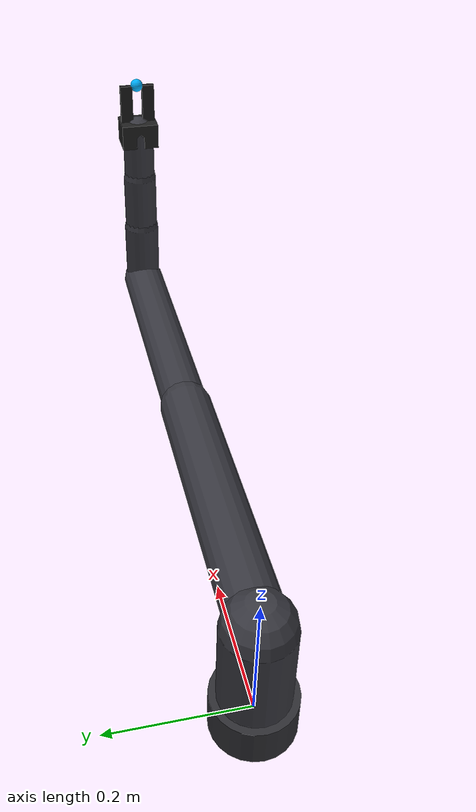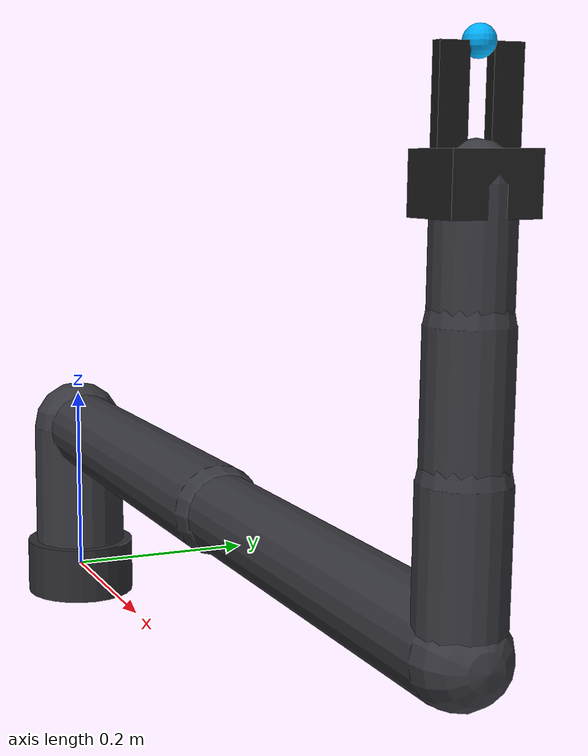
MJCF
<mujoco model="ur5e_robotiq_2f85_vendored">
  <compiler angle="radian" coordinate="local" autolimits="true"/>
  <option timestep="0.002" gravity="0 0 -9.81"/>
  <visual>
    <map znear="0.01"/>
    <headlight ambient="0.25 0.25 0.25" diffuse="0.6 0.6 0.6" specular="0.1 0.1 0.1"/>
  </visual>
  <default>
    <joint limited="true" damping="1.0" armature="0.01"/>
    <geom type="capsule" size="0.03" density="300" rgba="0.22 0.22 0.25 1" contype="0" conaffinity="0"/>
    <default class="finger">
      <joint type="slide" limited="true" damping="0.2" range="0 0.0425"/>
      <geom type="box" size="0.004 0.01 0.04" density="200" rgba="0.1 0.1 0.1 1" contype="0" conaffinity="0"/>
    </default>
  </default>
  <worldbody>
    <body name="base_link" pos="0 0 0">
      <geom type="cylinder" size="0.06 0.03" density="500" rgba="0.18 0.18 0.2 1" contype="0" conaffinity="0"/>
      <body name="shoulder_pan_link" pos="0 0 0.03">
        <joint name="shoulder_pan_joint" axis="0 0 1" range="-6.283 6.283"/>
        <geom fromto="0 0 0 0 0 0.1325" size="0.05"/>
        <body name="shoulder_lift_link" pos="0 0 0.1325">
          <joint name="shoulder_lift_joint" axis="0 1 0" range="-6.283 6.283"/>
          <geom fromto="0 0 0 0.425 0 0" size="0.04"/>
          <body name="elbow_link" pos="0.425 0 0">
            <joint name="elbow_joint" axis="0 1 0" range="-6.283 6.283"/>
            <geom fromto="0 0 0 0.3922 0 0" size="0.035"/>
            <body name="wrist_1_link" pos="0.3922 0 0">
              <joint name="wrist_1_joint" axis="0 1 0" range="-6.283 6.283"/>
              <geom fromto="0 0 0 0 0 0.1093" size="0.03"/>
              <body name="wrist_2_link" pos="0 0 0.1093">
                <joint name="wrist_2_joint" axis="1 0 0" range="-6.283 6.283"/>
                <geom fromto="0 0 0 0 0 0.09475" size="0.028"/>
                <body name="wrist_3_link" pos="0 0 0.09475">
                  <joint name="wrist_3_joint" axis="0 1 0" range="-6.283 6.283"/>
                  <geom fromto="0 0 0 0 0 0.0823" size="0.026"/>
                  <body name="tool0" pos="0 0 0.0823">
                    <geom type="box" size="0.025 0.03 0.02" density="250" rgba="0.12 0.12 0.12 1" contype="0" conaffinity="0"/>
                    <site name="tool0_site" pos="0 0 0.08" size="0.01" rgba="0.0 0.7 1.0 1"/>
                    <body name="left_finger" pos="0 0.018 0.04" childclass="finger">
                      <joint name="left_finger_slide" axis="0 1 0" range="0 0.0245"/>
                      <geom/>
                    </body>
                    <body name="right_finger" pos="0 -0.018 0.04" childclass="finger">
                      <joint name="right_finger_slide" axis="0 -1 0" range="0 0.0245"/>
                      <geom/>
                    </body>
                  </body>
                </body>
              </body>
            </body>
          </body>
        </body>
      </body>
    </body>
  </worldbody>
  <equality>
    <joint joint1="right_finger_slide" joint2="left_finger_slide" polycoef="0 1 0 0 0"/>
  </equality>
</mujoco>
